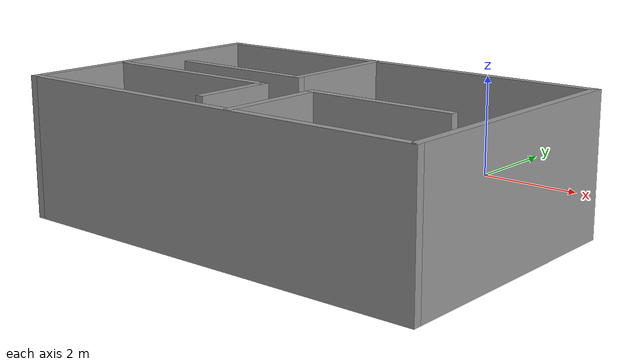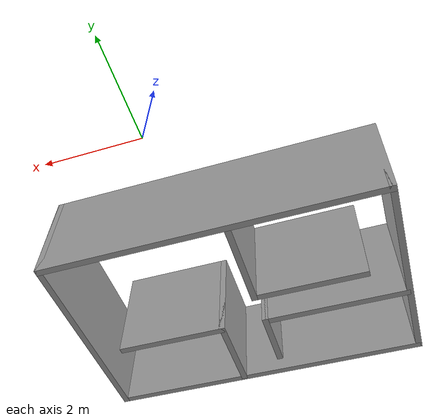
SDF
<?xml version='1.0'?>
<sdf version='1.7'>
  <model name='room'>
    <pose>-0.405 -3.6975 0 0 -0 0</pose>
    <link name='Wall_0'>
      <collision name='Wall_0_Collision'>
        <geometry>
          <box>
            <size>8 0.15 2.5</size>
          </box>
        </geometry>
        <pose>0 0 1.25 0 -0 0</pose>
      </collision>
      <visual name='Wall_0_Visual'>
        <pose>0 0 1.25 0 -0 0</pose>
        <geometry>
          <box>
            <size>8 0.15 2.5</size>
          </box>
        </geometry>
        <material>
          <script>
            <uri>file://media/materials/scripts/gazebo.material</uri>
            <name>Gazebo/Grey</name>
          </script>
          <ambient>1 1 1 1</ambient>
        </material>
        <meta>
          <layer>0</layer>
        </meta>
      </visual>
      <pose>-0 1.2275 0 0 -0 0</pose>
    </link>
    <link name='Wall_1'>
      <collision name='Wall_1_Collision'>
        <geometry>
          <box>
            <size>5 0.15 2.5</size>
          </box>
        </geometry>
        <pose>0 0 1.25 0 -0 0</pose>
      </collision>
      <visual name='Wall_1_Visual'>
        <pose>0 0 1.25 0 -0 0</pose>
        <geometry>
          <box>
            <size>5 0.15 2.5</size>
          </box>
        </geometry>
        <material>
          <script>
            <uri>file://media/materials/scripts/gazebo.material</uri>
            <name>Gazebo/Grey</name>
          </script>
          <ambient>1 1 1 1</ambient>
        </material>
        <meta>
          <layer>0</layer>
        </meta>
      </visual>
      <pose>3.925 -1.1975 0 0 -0 -1.5708</pose>
    </link>
    <link name='Wall_11'>
      <collision name='Wall_11_Collision'>
        <geometry>
          <box>
            <size>2 0.15 2.5</size>
          </box>
        </geometry>
        <pose>0 0 1.25 0 -0 0</pose>
      </collision>
      <visual name='Wall_11_Visual'>
        <pose>0 0 1.25 0 -0 0</pose>
        <geometry>
          <box>
            <size>2 0.15 2.5</size>
          </box>
        </geometry>
        <material>
          <script>
            <uri>file://media/materials/scripts/gazebo.material</uri>
            <name>Gazebo/Grey</name>
          </script>
          <ambient>1 1 1 1</ambient>
        </material>
        <meta>
          <layer>0</layer>
        </meta>
      </visual>
      <pose>0.575 -2.6575 0 0 -0 1.5708</pose>
    </link>
    <link name='Wall_12'>
      <collision name='Wall_12_Collision'>
        <geometry>
          <box>
            <size>2.75 0.15 2.5</size>
          </box>
        </geometry>
        <pose>0 0 1.25 0 -0 0</pose>
      </collision>
      <visual name='Wall_12_Visual'>
        <pose>0 0 1.25 0 -0 0</pose>
        <geometry>
          <box>
            <size>2.75 0.15 2.5</size>
          </box>
        </geometry>
        <material>
          <script>
            <uri>file://media/materials/scripts/gazebo.material</uri>
            <name>Gazebo/Grey</name>
          </script>
          <ambient>1 1 1 1</ambient>
        </material>
        <meta>
          <layer>0</layer>
        </meta>
      </visual>
      <pose>1.875 -1.7325 0 0 -0 0</pose>
    </link>
    <link name='Wall_2'>
      <collision name='Wall_2_Collision'>
        <geometry>
          <box>
            <size>8 0.15 2.5</size>
          </box>
        </geometry>
        <pose>0 0 1.25 0 -0 0</pose>
      </collision>
      <visual name='Wall_2_Visual'>
        <pose>0 0 1.25 0 -0 0</pose>
        <geometry>
          <box>
            <size>8 0.15 2.5</size>
          </box>
        </geometry>
        <material>
          <script>
            <uri>file://media/materials/scripts/gazebo.material</uri>
            <name>Gazebo/Grey</name>
          </script>
          <ambient>1 1 1 1</ambient>
        </material>
        <meta>
          <layer>0</layer>
        </meta>
      </visual>
      <pose>-0 -3.6225 0 0 -0 3.14159</pose>
    </link>
    <link name='Wall_3'>
      <collision name='Wall_3_Collision'>
        <geometry>
          <box>
            <size>5 0.15 2.5</size>
          </box>
        </geometry>
        <pose>0 0 1.25 0 -0 0</pose>
      </collision>
      <visual name='Wall_3_Visual'>
        <pose>0 0 1.25 0 -0 0</pose>
        <geometry>
          <box>
            <size>5 0.15 2.5</size>
          </box>
        </geometry>
        <material>
          <script>
            <uri>file://media/materials/scripts/gazebo.material</uri>
            <name>Gazebo/Grey</name>
          </script>
          <ambient>1 1 1 1</ambient>
        </material>
        <meta>
          <layer>0</layer>
        </meta>
      </visual>
      <pose>-3.925 -1.1975 0 0 -0 1.5708</pose>
    </link>
    <link name='Wall_5'>
      <collision name='Wall_5_Collision'>
        <geometry>
          <box>
            <size>2.25 0.15 2.5</size>
          </box>
        </geometry>
        <pose>0 0 1.25 0 -0 0</pose>
      </collision>
      <visual name='Wall_5_Visual'>
        <pose>0 0 1.25 0 -0 0</pose>
        <geometry>
          <box>
            <size>2.25 0.15 2.5</size>
          </box>
        </geometry>
        <material>
          <script>
            <uri>file://media/materials/scripts/gazebo.material</uri>
            <name>Gazebo/Grey</name>
          </script>
          <ambient>1 1 1 1</ambient>
        </material>
        <meta>
          <layer>0</layer>
        </meta>
      </visual>
      <pose>-0.455 0.1475 0 0 -0 -1.5708</pose>
    </link>
    <link name='Wall_6'>
      <collision name='Wall_6_Collision'>
        <geometry>
          <box>
            <size>2.75 0.15 2.5</size>
          </box>
        </geometry>
        <pose>0 0 1.25 0 -0 0</pose>
      </collision>
      <visual name='Wall_6_Visual'>
        <pose>0 0 1.25 0 -0 0</pose>
        <geometry>
          <box>
            <size>2.75 0.15 2.5</size>
          </box>
        </geometry>
        <material>
          <script>
            <uri>file://media/materials/scripts/gazebo.material</uri>
            <name>Gazebo/Grey</name>
          </script>
          <ambient>1 1 1 1</ambient>
        </material>
        <meta>
          <layer>0</layer>
        </meta>
      </visual>
      <pose>-1.755 -0.9025 0 0 -0 3.14159</pose>
    </link>
    <link name='Wall_8'>
      <collision name='Wall_8_Collision'>
        <geometry>
          <box>
            <size>3.5 0.15 2.5</size>
          </box>
        </geometry>
        <pose>0 0 1.25 0 -0 0</pose>
      </collision>
      <visual name='Wall_8_Visual'>
        <pose>0 0 1.25 0 -0 0</pose>
        <geometry>
          <box>
            <size>3.5 0.15 2.5</size>
          </box>
        </geometry>
        <material>
          <script>
            <uri>file://media/materials/scripts/gazebo.material</uri>
            <name>Gazebo/Grey</name>
          </script>
          <ambient>1 1 1 1</ambient>
        </material>
        <meta>
          <layer>0</layer>
        </meta>
      </visual>
      <pose>-2.18 -1.7325 0 0 -0 0</pose>
    </link>
    <link name='Wall_9'>
      <collision name='Wall_9_Collision'>
        <geometry>
          <box>
            <size>1.5 0.15 2.5</size>
          </box>
        </geometry>
        <pose>0 0 1.25 0 -0 0</pose>
      </collision>
      <visual name='Wall_9_Visual'>
        <pose>0 0 1.25 0 -0 0</pose>
        <geometry>
          <box>
            <size>1.5 0.15 2.5</size>
          </box>
        </geometry>
        <material>
          <script>
            <uri>file://media/materials/scripts/gazebo.material</uri>
            <name>Gazebo/Grey</name>
          </script>
          <ambient>1 1 1 1</ambient>
        </material>
        <meta>
          <layer>0</layer>
        </meta>
      </visual>
      <pose>-0.505 -2.4075 0 0 -0 -1.5708</pose>
    </link>
    <static>1</static>
  </model>
</sdf>
